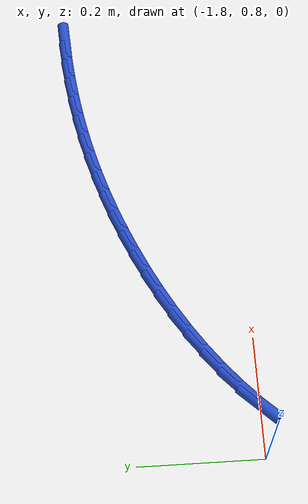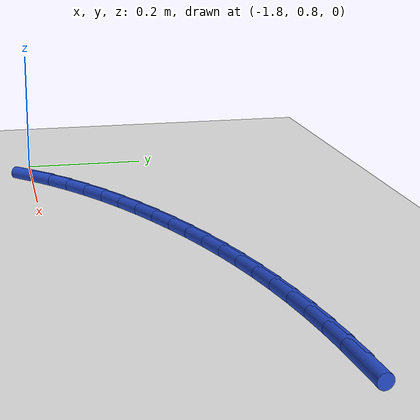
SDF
<sdf version="1.6">
 <world name="default">
  <model name="ground_plane">
   <static>1</static>
   <link name="link">
    <collision name="collision">
     <geometry><plane><normal>0 0 1</normal><size>100 100</size></plane></geometry>
     <surface><friction><ode><mu>100</mu><mu2>50</mu2></ode></friction></surface>
    </collision>
    <visual name="visual">
     <cast_shadows>0</cast_shadows>
     <geometry><plane><normal>0 0 1</normal><size>100 100</size></plane></geometry>
     <material>
      <script><uri>file://media/materials/scripts/gazebo.material</uri><name>Gazebo/WhiteGlow</name></script>
     </material>
    </visual>
   </link>
  </model>
  <model name="line">
   <link name="link_39">
    <pose>-0.9915788551542861 1.0924042592652627 0.01 0 1.57 0.07425359649814745</pose>
    <collision name="collision">
     <geometry><cylinder><radius>0.01</radius><length>0.08</length></cylinder></geometry>
    </collision>
    <visual name="visual">
     <material>
      <script><name>Gazebo/Blue</name><uri>file://media/materials/scripts/gazebo.material</uri></script>
     </material>
     <geometry><cylinder><radius>0.01</radius><length>0.08</length></cylinder></geometry>
    </visual>
   </link>
   <link name="link_40">
    <pose>-1.0342308404844875 1.0892313624544507 0.01 0 1.57 0.10800493814997753</pose>
    <collision name="collision">
     <geometry><cylinder><radius>0.01</radius><length>0.08</length></cylinder></geometry>
    </collision>
    <visual name="visual">
     <material>
      <script><name>Gazebo/Blue</name><uri>file://media/materials/scripts/gazebo.material</uri></script>
     </material>
     <geometry><cylinder><radius>0.01</radius><length>0.08</length></cylinder></geometry>
    </visual>
   </link>
   <link name="link_41">
    <pose>-1.076518770796116 1.084646214591214 0.01 0 1.57 0.1394423321948671</pose>
    <collision name="collision">
     <geometry><cylinder><radius>0.01</radius><length>0.08</length></cylinder></geometry>
    </collision>
    <visual name="visual">
     <material>
      <script><name>Gazebo/Blue</name><uri>file://media/materials/scripts/gazebo.material</uri></script>
     </material>
     <geometry><cylinder><radius>0.01</radius><length>0.08</length></cylinder></geometry>
    </visual>
   </link>
   <link name="link_42">
    <pose>-1.1182851522714998 1.0787841694192992 0.01 0 1.57 0.17118040340994842</pose>
    <collision name="collision">
     <geometry><cylinder><radius>0.01</radius><length>0.08</length></cylinder></geometry>
    </collision>
    <visual name="visual">
     <material>
      <script><name>Gazebo/Blue</name><uri>file://media/materials/scripts/gazebo.material</uri></script>
     </material>
     <geometry><cylinder><radius>0.01</radius><length>0.08</length></cylinder></geometry>
    </visual>
   </link>
   <link name="link_43">
    <pose>-1.1595267264960334 1.0716546455137161 0.01 0 1.57 0.20357888360128518</pose>
    <collision name="collision">
     <geometry><cylinder><radius>0.01</radius><length>0.08</length></cylinder></geometry>
    </collision>
    <visual name="visual">
     <material>
      <script><name>Gazebo/Blue</name><uri>file://media/materials/scripts/gazebo.material</uri></script>
     </material>
     <geometry><cylinder><radius>0.01</radius><length>0.08</length></cylinder></geometry>
    </visual>
   </link>
   <link name="link_44">
    <pose>-1.2002685263221498 1.0632439612700235 0.01 0 1.57 0.23651764979526615</pose>
    <collision name="collision">
     <geometry><cylinder><radius>0.01</radius><length>0.08</length></cylinder></geometry>
    </collision>
    <visual name="visual">
     <material>
      <script><name>Gazebo/Blue</name><uri>file://media/materials/scripts/gazebo.material</uri></script>
     </material>
     <geometry><cylinder><radius>0.01</radius><length>0.08</length></cylinder></geometry>
    </visual>
   </link>
   <link name="link_45">
    <pose>-1.2405355846022805 1.0535384350837784 0.01 0 1.57 0.2698664262997794</pose>
    <collision name="collision">
     <geometry><cylinder><radius>0.01</radius><length>0.08</length></cylinder></geometry>
    </collision>
    <visual name="visual">
     <material>
      <script><name>Gazebo/Blue</name><uri>file://media/materials/scripts/gazebo.material</uri></script>
     </material>
     <geometry><cylinder><radius>0.01</radius><length>0.08</length></cylinder></geometry>
    </visual>
   </link>
   <link name="link_46">
    <pose>-1.2803529341888598 1.0425243853505397 0.01 0 1.57 0.30348708083744264</pose>
    <collision name="collision">
     <geometry><cylinder><radius>0.01</radius><length>0.08</length></cylinder></geometry>
    </collision>
    <visual name="visual">
     <material>
      <script><name>Gazebo/Blue</name><uri>file://media/materials/scripts/gazebo.material</uri></script>
     </material>
     <geometry><cylinder><radius>0.01</radius><length>0.08</length></cylinder></geometry>
    </visual>
   </link>
   <link name="link_47">
    <pose>-1.3197456079343197 1.0301881304658655 0.01 0 1.57 0.33723630496613444</pose>
    <collision name="collision">
     <geometry><cylinder><radius>0.01</radius><length>0.08</length></cylinder></geometry>
    </collision>
    <visual name="visual">
     <material>
      <script><name>Gazebo/Blue</name><uri>file://media/materials/scripts/gazebo.material</uri></script>
     </material>
     <geometry><cylinder><radius>0.01</radius><length>0.08</length></cylinder></geometry>
    </visual>
   </link>
   <link name="link_48">
    <pose>-1.3587386386910945 1.0165159888253141 0.01 0 1.57 0.37096855601701206</pose>
    <collision name="collision">
     <geometry><cylinder><radius>0.01</radius><length>0.08</length></cylinder></geometry>
    </collision>
    <visual name="visual">
     <material>
      <script><name>Gazebo/Blue</name><uri>file://media/materials/scripts/gazebo.material</uri></script>
     </material>
     <geometry><cylinder><radius>0.01</radius><length>0.08</length></cylinder></geometry>
    </visual>
   </link>
   <link name="link_49">
    <pose>-1.3973570593116145 1.0014942788244432 0.01 0 1.57 0.40453911349773936</pose>
    <collision name="collision">
     <geometry><cylinder><radius>0.01</radius><length>0.08</length></cylinder></geometry>
    </collision>
    <visual name="visual">
     <material>
      <script><name>Gazebo/Blue</name><uri>file://media/materials/scripts/gazebo.material</uri></script>
     </material>
     <geometry><cylinder><radius>0.01</radius><length>0.08</length></cylinder></geometry>
    </visual>
   </link>
   <link name="link_50">
    <pose>-1.4356259026483147 0.9851093188588111 0.01 0 1.57 0.43810907245205244</pose>
    <collision name="collision">
     <geometry><cylinder><radius>0.01</radius><length>0.08</length></cylinder></geometry>
    </collision>
    <visual name="visual">
     <material>
      <script><name>Gazebo/Blue</name><uri>file://media/materials/scripts/gazebo.material</uri></script>
     </material>
     <geometry><cylinder><radius>0.01</radius><length>0.08</length></cylinder></geometry>
    </visual>
   </link>
   <link name="link_51">
    <pose>-1.4735444292242035 0.9673455297504959 0.01 0 1.57 0.47349772439308224</pose>
    <collision name="collision">
     <geometry><cylinder><radius>0.01</radius><length>0.08</length></cylinder></geometry>
    </collision>
    <visual name="visual">
     <material>
      <script><name>Gazebo/Blue</name><uri>file://media/materials/scripts/gazebo.material</uri></script>
     </material>
     <geometry><cylinder><radius>0.01</radius><length>0.08</length></cylinder></geometry>
    </visual>
   </link>
   <link name="link_52">
    <pose>-1.5109576388553578 0.9481759743639133 0.01 0 1.57 0.5116668210867137</pose>
    <collision name="collision">
     <geometry><cylinder><radius>0.01</radius><length>0.08</length></cylinder></geometry>
    </collision>
    <visual name="visual">
     <material>
      <script><name>Gazebo/Blue</name><uri>file://media/materials/scripts/gazebo.material</uri></script>
     </material>
     <geometry><cylinder><radius>0.01</radius><length>0.08</length></cylinder></geometry>
    </visual>
   </link>
   <link name="link_53">
    <pose>-1.5476533900152138 0.9275695083420579 0.01 0 1.57 0.5529649195357228</pose>
    <collision name="collision">
     <geometry><cylinder><radius>0.01</radius><length>0.08</length></cylinder></geometry>
    </collision>
    <visual name="visual">
     <material>
      <script><name>Gazebo/Blue</name><uri>file://media/materials/scripts/gazebo.material</uri></script>
     </material>
     <geometry><cylinder><radius>0.01</radius><length>0.08</length></cylinder></geometry>
    </visual>
   </link>
   <link name="link_54">
    <pose>-1.5834194481565473 0.9054949804789695 0.01 0 1.57 0.5977557230571702</pose>
    <collision name="collision">
     <geometry><cylinder><radius>0.01</radius><length>0.08</length></cylinder></geometry>
    </collision>
    <visual name="visual">
     <material>
      <script><name>Gazebo/Blue</name><uri>file://media/materials/scripts/gazebo.material</uri></script>
     </material>
     <geometry><cylinder><radius>0.01</radius><length>0.08</length></cylinder></geometry>
    </visual>
   </link>
   <link name="link_55">
    <pose>-1.6180435787321352 0.8819212395686875 0.01 0 1.57 0.6464115516235832</pose>
    <collision name="collision">
     <geometry><cylinder><radius>0.01</radius><length>0.08</length></cylinder></geometry>
    </collision>
    <visual name="visual">
     <material>
      <script><name>Gazebo/Blue</name><uri>file://media/materials/scripts/gazebo.material</uri></script>
     </material>
     <geometry><cylinder><radius>0.01</radius><length>0.08</length></cylinder></geometry>
    </visual>
   </link>
   <link name="link_56">
    <pose>-1.6513135471947535 0.8568171344052513 0.01 0 1.57 0.6992997245450739</pose>
    <collision name="collision">
     <geometry><cylinder><radius>0.01</radius><length>0.08</length></cylinder></geometry>
    </collision>
    <visual name="visual">
     <material>
      <script><name>Gazebo/Blue</name><uri>file://media/materials/scripts/gazebo.material</uri></script>
     </material>
     <geometry><cylinder><radius>0.01</radius><length>0.08</length></cylinder></geometry>
    </visual>
   </link>
   <link name="link_57">
    <pose>-1.683017118997179 0.8301515137827008 0.01 0 1.57 0.7567610845434604</pose>
    <collision name="collision">
     <geometry><cylinder><radius>0.01</radius><length>0.08</length></cylinder></geometry>
    </collision>
    <visual name="visual">
     <material>
      <script><name>Gazebo/Blue</name><uri>file://media/materials/scripts/gazebo.material</uri></script>
     </material>
     <geometry><cylinder><radius>0.01</radius><length>0.08</length></cylinder></geometry>
    </visual>
   </link>
   <link name="link_58">
    <pose>-1.7129420595921874 0.8018932264950751 0.01 0 1.57 0.8190586255264551</pose>
    <collision name="collision">
     <geometry><cylinder><radius>0.01</radius><length>0.08</length></cylinder></geometry>
    </collision>
    <visual name="visual">
     <material>
      <script><name>Gazebo/Blue</name><uri>file://media/materials/scripts/gazebo.material</uri></script>
     </material>
     <geometry><cylinder><radius>0.01</radius><length>0.08</length></cylinder></geometry>
    </visual>
   </link>
  </model>
 </world>
</sdf>
